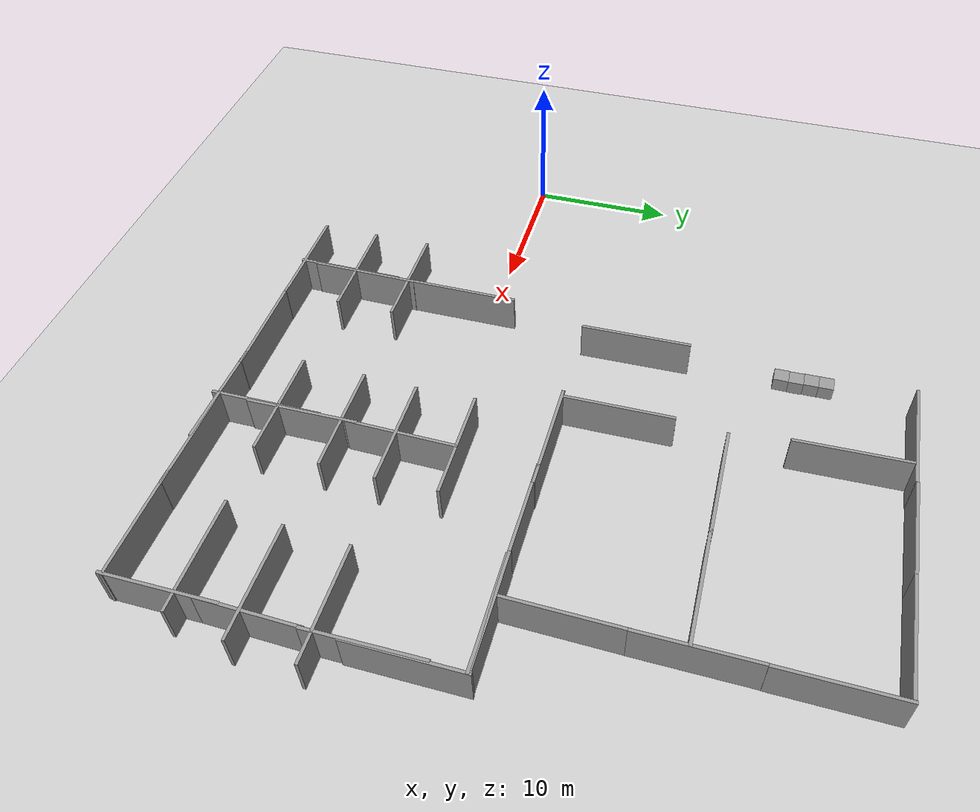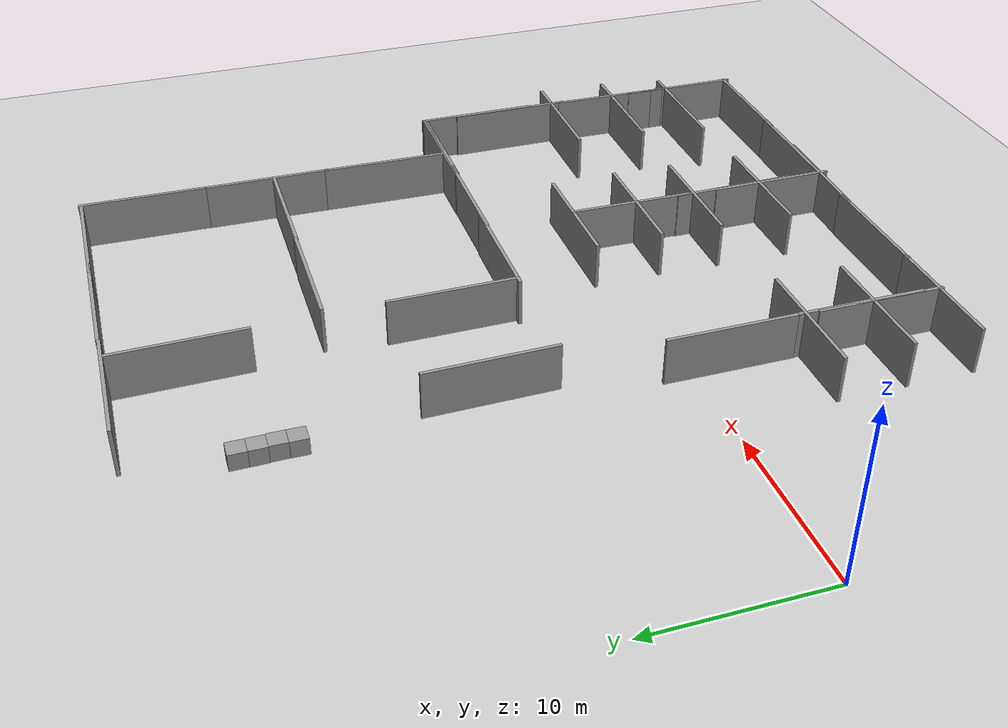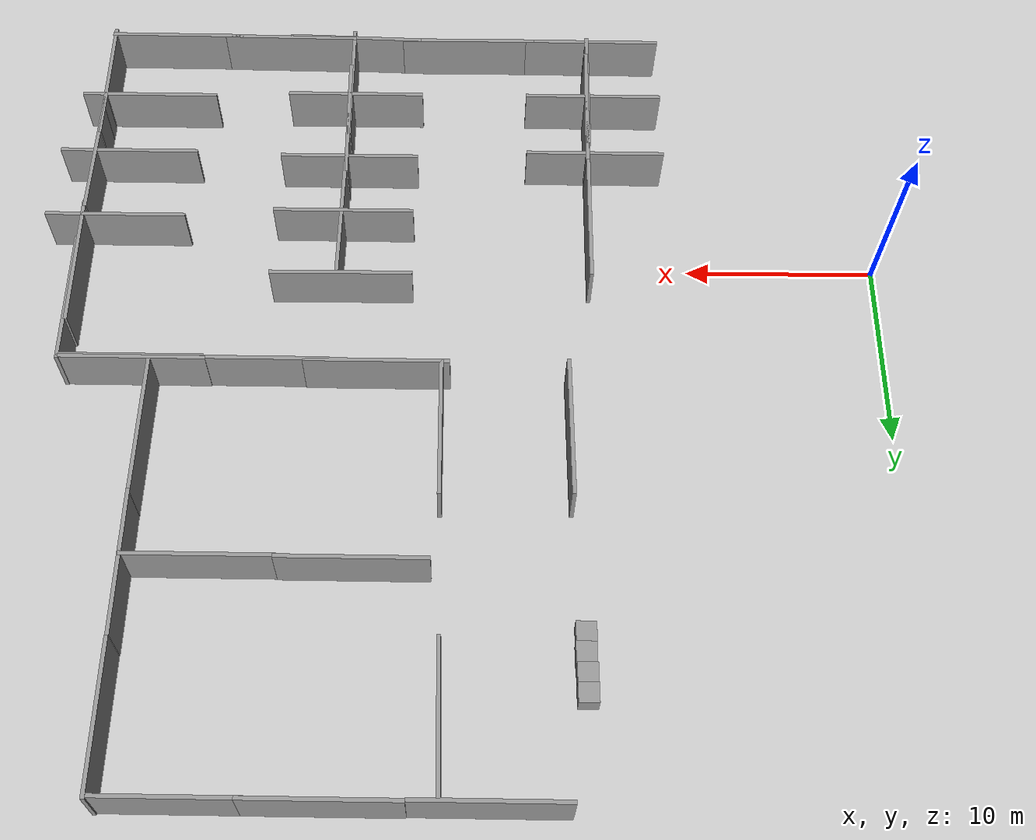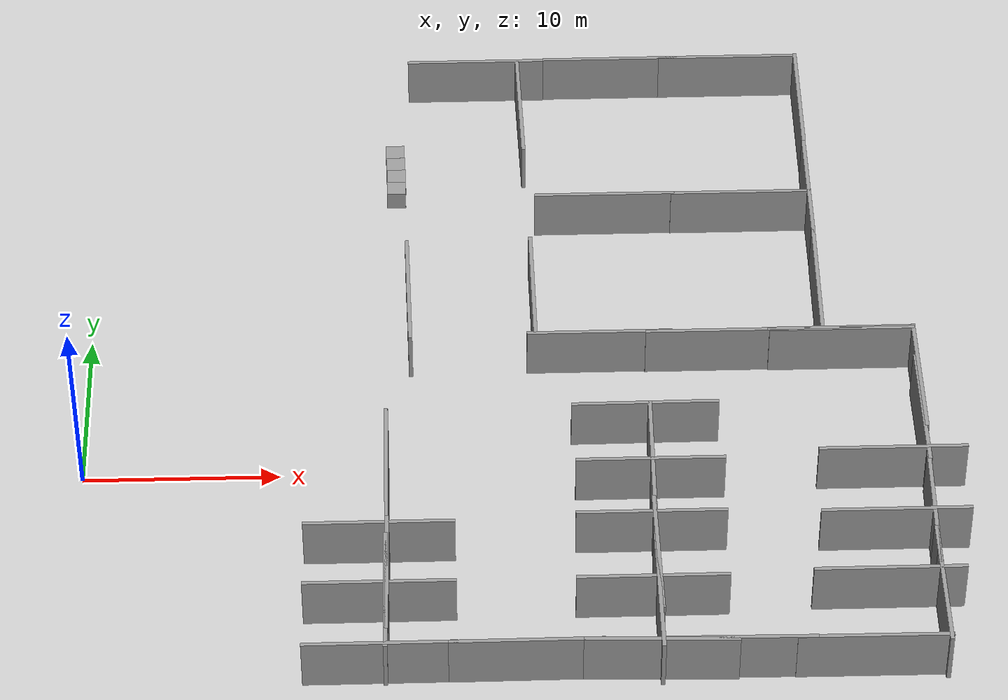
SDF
<sdf version="1.4">
 <world name="default">
  <model name="ground_plane">
   <static>1</static>
   <link name="link">
    <collision name="collision">
     <geometry><plane><normal>0 0 1</normal><size>100 100</size></plane></geometry>
     <surface><friction><ode><mu>100</mu><mu2>50</mu2></ode></friction></surface>
    </collision>
    <visual name="visual">
     <cast_shadows>0</cast_shadows>
     <geometry><plane><normal>0 0 1</normal><size>100 100</size></plane></geometry>
     <material>
      <script><uri>file://media/materials/scripts/gazebo.material</uri><name>Gazebo/Grey</name></script>
     </material>
    </visual>
    <velocity_decay><linear>0</linear><angular>0</angular></velocity_decay>
   </link>
  </model>
  <model name="grey_wall_17">
   <static>1</static>
   <link name="link">
    <pose>0 0 1.4 0 -0 0</pose>
    <collision name="collision"><geometry><box><size>7.5 0.2 2.8</size></box></geometry></collision>
    <visual name="visual">
     <cast_shadows>0</cast_shadows>
     <geometry><box><size>7.5 0.2 2.8</size></box></geometry>
     <material>
      <script>
       <uri>model://grey_wall/materials/scripts</uri>
       <uri>model://grey_wall/materials/textures</uri>
       <name>vrc/grey_wall</name>
      </script>
     </material>
    </visual>
    <velocity_decay><linear>0</linear><angular>0</angular></velocity_decay>
   </link>
   <pose>16.6069 10.8547 0 0 -0 1.58697</pose>
  </model>
  <model name="grey_wall_22">
   <static>1</static>
   <link name="link">
    <pose>0 0 1.4 0 -0 0</pose>
    <collision name="collision"><geometry><box><size>7.5 0.2 2.8</size></box></geometry></collision>
    <visual name="visual">
     <cast_shadows>0</cast_shadows>
     <geometry><box><size>7.5 0.2 2.8</size></box></geometry>
     <material>
      <script>
       <uri>model://grey_wall/materials/scripts</uri>
       <uri>model://grey_wall/materials/textures</uri>
       <name>vrc/grey_wall</name>
      </script>
     </material>
    </visual>
    <velocity_decay><linear>0</linear><angular>0</angular></velocity_decay>
   </link>
   <pose>15.2983 -10.4835 0 0 -0 1.56473</pose>
  </model>
  <model name="grey_wall_23">
   <static>1</static>
   <link name="link">
    <pose>0 0 1.4 0 -0 0</pose>
    <collision name="collision"><geometry><box><size>7.5 0.2 2.8</size></box></geometry></collision>
    <visual name="visual">
     <cast_shadows>0</cast_shadows>
     <geometry><box><size>7.5 0.2 2.8</size></box></geometry>
     <material>
      <script>
       <uri>model://grey_wall/materials/scripts</uri>
       <uri>model://grey_wall/materials/textures</uri>
       <name>vrc/grey_wall</name>
      </script>
     </material>
    </visual>
    <velocity_decay><linear>0</linear><angular>0</angular></velocity_decay>
   </link>
   <pose>28.5277 2.01083 0 0 -0 0.006082</pose>
  </model>
  <model name="grey_wall_24">
   <static>1</static>
   <link name="link">
    <pose>0 0 1.4 0 -0 0</pose>
    <collision name="collision"><geometry><box><size>7.5 0.2 2.8</size></box></geometry></collision>
    <visual name="visual">
     <cast_shadows>0</cast_shadows>
     <geometry><box><size>7.5 0.2 2.8</size></box></geometry>
     <material>
      <script>
       <uri>model://grey_wall/materials/scripts</uri>
       <uri>model://grey_wall/materials/textures</uri>
       <name>vrc/grey_wall</name>
      </script>
     </material>
    </visual>
    <velocity_decay><linear>0</linear><angular>0</angular></velocity_decay>
   </link>
   <pose>15.3834 -1.8248 0 0 -0 1.57032</pose>
  </model>
  <model name="grey_wall_25">
   <static>1</static>
   <link name="link">
    <pose>0 0 1.4 0 -0 0</pose>
    <collision name="collision"><geometry><box><size>7.5 0.2 2.8</size></box></geometry></collision>
    <visual name="visual">
     <cast_shadows>0</cast_shadows>
     <geometry><box><size>7.5 0.2 2.8</size></box></geometry>
     <material>
      <script>
       <uri>model://grey_wall/materials/scripts</uri>
       <uri>model://grey_wall/materials/textures</uri>
       <name>vrc/grey_wall</name>
      </script>
     </material>
    </visual>
    <velocity_decay><linear>0</linear><angular>0</angular></velocity_decay>
   </link>
   <pose>15.3725 -9.31245 0 0 -0 1.56183</pose>
  </model>
  <model name="grey_wall_26">
   <static>1</static>
   <link name="link">
    <pose>0 0 1.4 0 -0 0</pose>
    <collision name="collision"><geometry><box><size>7.5 0.2 2.8</size></box></geometry></collision>
    <visual name="visual">
     <cast_shadows>0</cast_shadows>
     <geometry><box><size>7.5 0.2 2.8</size></box></geometry>
     <material>
      <script>
       <uri>model://grey_wall/materials/scripts</uri>
       <uri>model://grey_wall/materials/textures</uri>
       <name>vrc/grey_wall</name>
      </script>
     </material>
    </visual>
    <velocity_decay><linear>0</linear><angular>0</angular></velocity_decay>
   </link>
   <pose>28.5623 -10.8382 0 0 -0 1.57239</pose>
  </model>
  <model name="grey_wall_28">
   <static>1</static>
   <link name="link">
    <pose>0 0 1.4 0 -0 0</pose>
    <collision name="collision"><geometry><box><size>7.5 0.2 2.8</size></box></geometry></collision>
    <visual name="visual">
     <cast_shadows>0</cast_shadows>
     <geometry><box><size>7.5 0.2 2.8</size></box></geometry>
     <material>
      <script>
       <uri>model://grey_wall/materials/scripts</uri>
       <uri>model://grey_wall/materials/textures</uri>
       <name>vrc/grey_wall</name>
      </script>
     </material>
    </visual>
    <velocity_decay><linear>0</linear><angular>0</angular></velocity_decay>
   </link>
   <pose>15 -6 0 0 -0 0</pose>
  </model>
  <model name="grey_wall_29">
   <static>1</static>
   <link name="link">
    <pose>0 0 1.4 0 -0 0</pose>
    <collision name="collision"><geometry><box><size>7.5 0.2 2.8</size></box></geometry></collision>
    <visual name="visual">
     <cast_shadows>0</cast_shadows>
     <geometry><box><size>7.5 0.2 2.8</size></box></geometry>
     <material>
      <script>
       <uri>model://grey_wall/materials/scripts</uri>
       <uri>model://grey_wall/materials/textures</uri>
       <name>vrc/grey_wall</name>
      </script>
     </material>
    </visual>
    <velocity_decay><linear>0</linear><angular>0</angular></velocity_decay>
   </link>
   <pose>15 -10 0 0 -0 0</pose>
  </model>
  <model name="grey_wall_34">
   <static>1</static>
   <link name="link">
    <pose>0 0 1.4 0 -0 0</pose>
    <collision name="collision"><geometry><box><size>7.5 0.2 2.8</size></box></geometry></collision>
    <visual name="visual">
     <cast_shadows>0</cast_shadows>
     <geometry><box><size>7.5 0.2 2.8</size></box></geometry>
     <material>
      <script>
       <uri>model://grey_wall/materials/scripts</uri>
       <uri>model://grey_wall/materials/textures</uri>
       <name>vrc/grey_wall</name>
      </script>
     </material>
    </visual>
    <velocity_decay><linear>0</linear><angular>0</angular></velocity_decay>
   </link>
   <pose>15 -14 0 0 -0 0</pose>
  </model>
  <model name="grey_wall_35">
   <static>1</static>
   <link name="link">
    <pose>0 0 1.4 0 -0 0</pose>
    <collision name="collision"><geometry><box><size>7.5 0.2 2.8</size></box></geometry></collision>
    <visual name="visual">
     <cast_shadows>0</cast_shadows>
     <geometry><box><size>7.5 0.2 2.8</size></box></geometry>
     <material>
      <script>
       <uri>model://grey_wall/materials/scripts</uri>
       <uri>model://grey_wall/materials/textures</uri>
       <name>vrc/grey_wall</name>
      </script>
     </material>
    </visual>
    <velocity_decay><linear>0</linear><angular>0</angular></velocity_decay>
   </link>
   <pose>26.442 7.30167 0 0 -0 0</pose>
  </model>
  <model name="grey_wall_37">
   <static>1</static>
   <link name="link">
    <pose>0 0 1.4 0 -0 0</pose>
    <collision name="collision"><geometry><box><size>7.5 0.2 2.8</size></box></geometry></collision>
    <visual name="visual">
     <cast_shadows>0</cast_shadows>
     <geometry><box><size>7.5 0.2 2.8</size></box></geometry>
     <material>
      <script>
       <uri>model://grey_wall/materials/scripts</uri>
       <uri>model://grey_wall/materials/textures</uri>
       <name>vrc/grey_wall</name>
      </script>
     </material>
    </visual>
    <velocity_decay><linear>0</linear><angular>0</angular></velocity_decay>
   </link>
   <pose>32.2273 -14.1046 0 0 0 -0.011813</pose>
  </model>
  <model name="grey_wall_38">
   <static>1</static>
   <link name="link">
    <pose>0 0 1.4 0 -0 0</pose>
    <collision name="collision"><geometry><box><size>7.5 0.2 2.8</size></box></geometry></collision>
    <visual name="visual">
     <cast_shadows>0</cast_shadows>
     <geometry><box><size>7.5 0.2 2.8</size></box></geometry>
     <material>
      <script>
       <uri>model://grey_wall/materials/scripts</uri>
       <uri>model://grey_wall/materials/textures</uri>
       <name>vrc/grey_wall</name>
      </script>
     </material>
    </visual>
    <velocity_decay><linear>0</linear><angular>0</angular></velocity_decay>
   </link>
   <pose>32.5681 7.25099 0 0 -0 0</pose>
  </model>
  <model name="grey_wall_39">
   <static>1</static>
   <link name="link">
    <pose>0 0 1.4 0 -0 0</pose>
    <collision name="collision"><geometry><box><size>7.5 0.2 2.8</size></box></geometry></collision>
    <visual name="visual">
     <cast_shadows>0</cast_shadows>
     <geometry><box><size>7.5 0.2 2.8</size></box></geometry>
     <material>
      <script>
       <uri>model://grey_wall/materials/scripts</uri>
       <uri>model://grey_wall/materials/textures</uri>
       <name>vrc/grey_wall</name>
      </script>
     </material>
    </visual>
    <velocity_decay><linear>0</linear><angular>0</angular></velocity_decay>
   </link>
   <pose>28.5921 -1.97337 0 0 -0 0</pose>
  </model>
  <model name="grey_wall_40">
   <static>1</static>
   <link name="link">
    <pose>0 0 1.4 0 -0 0</pose>
    <collision name="collision"><geometry><box><size>7.5 0.2 2.8</size></box></geometry></collision>
    <visual name="visual">
     <cast_shadows>0</cast_shadows>
     <geometry><box><size>7.5 0.2 2.8</size></box></geometry>
     <material>
      <script>
       <uri>model://grey_wall/materials/scripts</uri>
       <uri>model://grey_wall/materials/textures</uri>
       <name>vrc/grey_wall</name>
      </script>
     </material>
    </visual>
    <velocity_decay><linear>0</linear><angular>0</angular></velocity_decay>
   </link>
   <pose>28.6271 -8.34501 0 0 -0 1.58026</pose>
  </model>
  <model name="grey_wall_41">
   <static>1</static>
   <link name="link">
    <pose>0 0 1.4 0 -0 0</pose>
    <collision name="collision"><geometry><box><size>7.5 0.2 2.8</size></box></geometry></collision>
    <visual name="visual">
     <cast_shadows>0</cast_shadows>
     <geometry><box><size>7.5 0.2 2.8</size></box></geometry>
     <material>
      <script>
       <uri>model://grey_wall/materials/scripts</uri>
       <uri>model://grey_wall/materials/textures</uri>
       <name>vrc/grey_wall</name>
      </script>
     </material>
    </visual>
    <velocity_decay><linear>0</linear><angular>0</angular></velocity_decay>
   </link>
   <pose>28.6946 -1.65305 0 0 -0 1.55442</pose>
  </model>
  <model name="grey_wall_42">
   <static>1</static>
   <link name="link">
    <pose>0 0 1.4 0 -0 0</pose>
    <collision name="collision"><geometry><box><size>7.5 0.2 2.8</size></box></geometry></collision>
    <visual name="visual">
     <cast_shadows>0</cast_shadows>
     <geometry><box><size>7.5 0.2 2.8</size></box></geometry>
     <material>
      <script>
       <uri>model://grey_wall/materials/scripts</uri>
       <uri>model://grey_wall/materials/textures</uri>
       <name>vrc/grey_wall</name>
      </script>
     </material>
    </visual>
    <velocity_decay><linear>0</linear><angular>0</angular></velocity_decay>
   </link>
   <pose>42.537 1.36044 0 0 -0 1.57033</pose>
  </model>
  <model name="grey_wall_43">
   <static>1</static>
   <link name="link">
    <pose>0 0 1.4 0 -0 0</pose>
    <collision name="collision"><geometry><box><size>7.5 0.2 2.8</size></box></geometry></collision>
    <visual name="visual">
     <cast_shadows>0</cast_shadows>
     <geometry><box><size>7.5 0.2 2.8</size></box></geometry>
     <material>
      <script>
       <uri>model://grey_wall/materials/scripts</uri>
       <uri>model://grey_wall/materials/textures</uri>
       <name>vrc/grey_wall</name>
      </script>
     </material>
    </visual>
    <velocity_decay><linear>0</linear><angular>0</angular></velocity_decay>
   </link>
   <pose>38.9668 7.18558 0 0 -0 0</pose>
  </model>
  <model name="grey_wall_44">
   <static>1</static>
   <link name="link">
    <pose>0 0 1.4 0 -0 0</pose>
    <collision name="collision"><geometry><box><size>7.5 0.2 2.8</size></box></geometry></collision>
    <visual name="visual">
     <cast_shadows>0</cast_shadows>
     <geometry><box><size>7.5 0.2 2.8</size></box></geometry>
     <material>
      <script>
       <uri>model://grey_wall/materials/scripts</uri>
       <uri>model://grey_wall/materials/textures</uri>
       <name>vrc/grey_wall</name>
      </script>
     </material>
    </visual>
    <velocity_decay><linear>0</linear><angular>0</angular></velocity_decay>
   </link>
   <pose>28.4566 -5.63207 0 0 -0 0</pose>
  </model>
  <model name="grey_wall_45">
   <static>1</static>
   <link name="link">
    <pose>0 0 1.4 0 -0 0</pose>
    <collision name="collision"><geometry><box><size>7.5 0.2 2.8</size></box></geometry></collision>
    <visual name="visual">
     <cast_shadows>0</cast_shadows>
     <geometry><box><size>7.5 0.2 2.8</size></box></geometry>
     <material>
      <script>
       <uri>model://grey_wall/materials/scripts</uri>
       <uri>model://grey_wall/materials/textures</uri>
       <name>vrc/grey_wall</name>
      </script>
     </material>
    </visual>
    <velocity_decay><linear>0</linear><angular>0</angular></velocity_decay>
   </link>
   <pose>28.3028 -9.98143 0 0 -0 0</pose>
  </model>
  <model name="grey_wall_46">
   <static>1</static>
   <link name="link">
    <pose>0 0 1.4 0 -0 0</pose>
    <collision name="collision"><geometry><box><size>7.5 0.2 2.8</size></box></geometry></collision>
    <visual name="visual">
     <cast_shadows>0</cast_shadows>
     <geometry><box><size>7.5 0.2 2.8</size></box></geometry>
     <material>
      <script>
       <uri>model://grey_wall/materials/scripts</uri>
       <uri>model://grey_wall/materials/textures</uri>
       <name>vrc/grey_wall</name>
      </script>
     </material>
    </visual>
    <velocity_decay><linear>0</linear><angular>0</angular></velocity_decay>
   </link>
   <pose>28.4962 -14.1047 0 0 0 -0.028932</pose>
  </model>
  <model name="grey_wall_47">
   <static>1</static>
   <link name="link">
    <pose>0 0 1.4 0 -0 0</pose>
    <collision name="collision"><geometry><box><size>7.5 0.2 2.8</size></box></geometry></collision>
    <visual name="visual">
     <cast_shadows>0</cast_shadows>
     <geometry><box><size>7.5 0.2 2.8</size></box></geometry>
     <material>
      <script>
       <uri>model://grey_wall/materials/scripts</uri>
       <uri>model://grey_wall/materials/textures</uri>
       <name>vrc/grey_wall</name>
      </script>
     </material>
    </visual>
    <velocity_decay><linear>0</linear><angular>0</angular></velocity_decay>
   </link>
   <pose>22.0352 -14.0013 -0 0 -0 0.003672</pose>
  </model>
  <model name="grey_wall_48">
   <static>1</static>
   <link name="link">
    <pose>0 0 1.4 0 -0 0</pose>
    <collision name="collision"><geometry><box><size>7.5 0.2 2.8</size></box></geometry></collision>
    <visual name="visual">
     <cast_shadows>0</cast_shadows>
     <geometry><box><size>7.5 0.2 2.8</size></box></geometry>
     <material>
      <script>
       <uri>model://grey_wall/materials/scripts</uri>
       <uri>model://grey_wall/materials/textures</uri>
       <name>vrc/grey_wall</name>
      </script>
     </material>
    </visual>
    <velocity_decay><linear>0</linear><angular>0</angular></velocity_decay>
   </link>
   <pose>42.3231 -10.7893 0 0 0 -1.57325</pose>
  </model>
  <model name="grey_wall_49">
   <static>1</static>
   <link name="link">
    <pose>0 0 1.4 0 -0 0</pose>
    <collision name="collision"><geometry><box><size>7.5 0.2 2.8</size></box></geometry></collision>
    <visual name="visual">
     <cast_shadows>0</cast_shadows>
     <geometry><box><size>7.5 0.2 2.8</size></box></geometry>
     <material>
      <script>
       <uri>model://grey_wall/materials/scripts</uri>
       <uri>model://grey_wall/materials/textures</uri>
       <name>vrc/grey_wall</name>
      </script>
     </material>
    </visual>
    <velocity_decay><linear>0</linear><angular>0</angular></velocity_decay>
   </link>
   <pose>38.7141 -14.1785 0 0 -0 3.13757</pose>
  </model>
  <model name="grey_wall_50">
   <static>1</static>
   <link name="link">
    <pose>0 0 1.4 0 -0 0</pose>
    <collision name="collision"><geometry><box><size>7.5 0.2 2.8</size></box></geometry></collision>
    <visual name="visual">
     <cast_shadows>0</cast_shadows>
     <geometry><box><size>7.5 0.2 2.8</size></box></geometry>
     <material>
      <script>
       <uri>model://grey_wall/materials/scripts</uri>
       <uri>model://grey_wall/materials/textures</uri>
       <name>vrc/grey_wall</name>
      </script>
     </material>
    </visual>
    <velocity_decay><linear>0</linear><angular>0</angular></velocity_decay>
   </link>
   <pose>42.6389 3.67322 0 0 0 -1.57549</pose>
  </model>
  <model name="grey_wall_51">
   <static>1</static>
   <link name="link">
    <pose>0 0 1.4 0 -0 0</pose>
    <collision name="collision"><geometry><box><size>7.5 0.2 2.8</size></box></geometry></collision>
    <visual name="visual">
     <cast_shadows>0</cast_shadows>
     <geometry><box><size>7.5 0.2 2.8</size></box></geometry>
     <material>
      <script>
       <uri>model://grey_wall/materials/scripts</uri>
       <uri>model://grey_wall/materials/textures</uri>
       <name>vrc/grey_wall</name>
      </script>
     </material>
    </visual>
    <velocity_decay><linear>0</linear><angular>0</angular></velocity_decay>
   </link>
   <pose>42.4021 -5.76703 0 0 0 -1.59608</pose>
  </model>
  <model name="grey_wall_52">
   <static>1</static>
   <link name="link">
    <pose>0 0 1.4 0 -0 0</pose>
    <collision name="collision"><geometry><box><size>7.5 0.2 2.8</size></box></geometry></collision>
    <visual name="visual">
     <cast_shadows>0</cast_shadows>
     <geometry><box><size>7.5 0.2 2.8</size></box></geometry>
     <material>
      <script>
       <uri>model://grey_wall/materials/scripts</uri>
       <uri>model://grey_wall/materials/textures</uri>
       <name>vrc/grey_wall</name>
      </script>
     </material>
    </visual>
    <velocity_decay><linear>0</linear><angular>0</angular></velocity_decay>
   </link>
   <pose>38.8629 7.28008 0 0 -0 0</pose>
  </model>
  <model name="grey_wall_53">
   <static>1</static>
   <link name="link">
    <pose>0 0 1.4 0 -0 0</pose>
    <collision name="collision"><geometry><box><size>7.5 0.2 2.8</size></box></geometry></collision>
    <visual name="visual">
     <cast_shadows>0</cast_shadows>
     <geometry><box><size>7.5 0.2 2.8</size></box></geometry>
     <material>
      <script>
       <uri>model://grey_wall/materials/scripts</uri>
       <uri>model://grey_wall/materials/textures</uri>
       <name>vrc/grey_wall</name>
      </script>
     </material>
    </visual>
    <velocity_decay><linear>0</linear><angular>0</angular></velocity_decay>
   </link>
   <pose>40.7842 -1.53121 0 0 -0 0</pose>
  </model>
  <model name="grey_wall_57">
   <static>1</static>
   <link name="link">
    <pose>0 0 1.4 0 -0 0</pose>
    <collision name="collision"><geometry><box><size>7.5 0.2 2.8</size></box></geometry></collision>
    <visual name="visual">
     <cast_shadows>0</cast_shadows>
     <geometry><box><size>7.5 0.2 2.8</size></box></geometry>
     <material>
      <script>
       <uri>model://grey_wall/materials/scripts</uri>
       <uri>model://grey_wall/materials/textures</uri>
       <name>vrc/grey_wall</name>
      </script>
     </material>
    </visual>
    <velocity_decay><linear>0</linear><angular>0</angular></velocity_decay>
   </link>
   <pose>38.1551 18.415 0 0 -0 1.56162</pose>
  </model>
  <model name="grey_wall_58">
   <static>1</static>
   <link name="link">
    <pose>0 0 1.4 0 -0 0</pose>
    <collision name="collision"><geometry><box><size>7.5 0.2 2.8</size></box></geometry></collision>
    <visual name="visual">
     <cast_shadows>0</cast_shadows>
     <geometry><box><size>7.5 0.2 2.8</size></box></geometry>
     <material>
      <script>
       <uri>model://grey_wall/materials/scripts</uri>
       <uri>model://grey_wall/materials/textures</uri>
       <name>vrc/grey_wall</name>
      </script>
     </material>
    </visual>
    <velocity_decay><linear>0</linear><angular>0</angular></velocity_decay>
   </link>
   <pose>38.2602 25.8907 0 0 0 -1.5829</pose>
  </model>
  <model name="grey_wall_59">
   <static>1</static>
   <link name="link">
    <pose>0 0 1.4 0 -0 0</pose>
    <collision name="collision"><geometry><box><size>7.5 0.2 2.8</size></box></geometry></collision>
    <visual name="visual">
     <cast_shadows>0</cast_shadows>
     <geometry><box><size>7.5 0.2 2.8</size></box></geometry>
     <material>
      <script>
       <uri>model://grey_wall/materials/scripts</uri>
       <uri>model://grey_wall/materials/textures</uri>
       <name>vrc/grey_wall</name>
      </script>
     </material>
    </visual>
    <velocity_decay><linear>0</linear><angular>0</angular></velocity_decay>
   </link>
   <pose>38.0442 11.147 0 0 -0 1.55216</pose>
  </model>
  <model name="grey_wall_61">
   <static>1</static>
   <link name="link">
    <pose>0 0 1.4 0 -0 0</pose>
    <collision name="collision"><geometry><box><size>7.5 0.2 2.8</size></box></geometry></collision>
    <visual name="visual">
     <cast_shadows>0</cast_shadows>
     <geometry><box><size>7.5 0.2 2.8</size></box></geometry>
     <material>
      <script>
       <uri>model://grey_wall/materials/scripts</uri>
       <uri>model://grey_wall/materials/textures</uri>
       <name>vrc/grey_wall</name>
      </script>
     </material>
    </visual>
    <velocity_decay><linear>0</linear><angular>0</angular></velocity_decay>
   </link>
   <pose>34.4803 18.0295 0 0 -0 0</pose>
  </model>
  <model name="grey_wall_62">
   <static>1</static>
   <link name="link">
    <pose>0 0 1.4 0 -0 0</pose>
    <collision name="collision"><geometry><box><size>7.5 0.2 2.8</size></box></geometry></collision>
    <visual name="visual">
     <cast_shadows>0</cast_shadows>
     <geometry><box><size>7.5 0.2 2.8</size></box></geometry>
     <material>
      <script>
       <uri>model://grey_wall/materials/scripts</uri>
       <uri>model://grey_wall/materials/textures</uri>
       <name>vrc/grey_wall</name>
      </script>
     </material>
    </visual>
    <velocity_decay><linear>0</linear><angular>0</angular></velocity_decay>
   </link>
   <pose>27.1612 18.0643 0 0 -0 0</pose>
  </model>
  <model name="grey_wall_63">
   <static>1</static>
   <link name="link">
    <pose>0 0 1.4 0 -0 0</pose>
    <collision name="collision"><geometry><box><size>7.5 0.2 2.8</size></box></geometry></collision>
    <visual name="visual">
     <cast_shadows>0</cast_shadows>
     <geometry><box><size>7.5 0.2 2.8</size></box></geometry>
     <material>
      <script>
       <uri>model://grey_wall/materials/scripts</uri>
       <uri>model://grey_wall/materials/textures</uri>
       <name>vrc/grey_wall</name>
      </script>
     </material>
    </visual>
    <velocity_decay><linear>0</linear><angular>0</angular></velocity_decay>
   </link>
   <pose>34.4463 29.4753 0 0 -0 0</pose>
  </model>
  <model name="grey_wall_64">
   <static>1</static>
   <link name="link">
    <pose>0 0 1.4 0 -0 0</pose>
    <collision name="collision"><geometry><box><size>7.5 0.2 2.8</size></box></geometry></collision>
    <visual name="visual">
     <cast_shadows>0</cast_shadows>
     <geometry><box><size>7.5 0.2 2.8</size></box></geometry>
     <material>
      <script>
       <uri>model://grey_wall/materials/scripts</uri>
       <uri>model://grey_wall/materials/textures</uri>
       <name>vrc/grey_wall</name>
      </script>
     </material>
    </visual>
    <velocity_decay><linear>0</linear><angular>0</angular></velocity_decay>
   </link>
   <pose>28 29.4782 0 0 -0 0</pose>
  </model>
  <model name="grey_wall_65">
   <static>1</static>
   <link name="link">
    <pose>0 0 1.4 0 -0 0</pose>
    <collision name="collision"><geometry><box><size>7.5 0.2 2.8</size></box></geometry></collision>
    <visual name="visual">
     <cast_shadows>0</cast_shadows>
     <geometry><box><size>7.5 0.2 2.8</size></box></geometry>
     <material>
      <script>
       <uri>model://grey_wall/materials/scripts</uri>
       <uri>model://grey_wall/materials/textures</uri>
       <name>vrc/grey_wall</name>
      </script>
     </material>
    </visual>
    <velocity_decay><linear>0</linear><angular>0</angular></velocity_decay>
   </link>
   <pose>20.4945 29.4359 0 0 -0 0</pose>
  </model>
  <model name="grey_wall_66">
   <static>1</static>
   <link name="link">
    <pose>0 0 1.4 0 -0 0</pose>
    <collision name="collision"><geometry><box><size>7.5 0.2 2.8</size></box></geometry></collision>
    <visual name="visual">
     <cast_shadows>0</cast_shadows>
     <geometry><box><size>7.5 0.2 2.8</size></box></geometry>
     <material>
      <script>
       <uri>model://grey_wall/materials/scripts</uri>
       <uri>model://grey_wall/materials/textures</uri>
       <name>vrc/grey_wall</name>
      </script>
     </material>
    </visual>
    <velocity_decay><linear>0</linear><angular>0</angular></velocity_decay>
   </link>
   <pose>22.8707 25.6136 0 0 0 -1.55129</pose>
  </model>
  <model name="grey_wall">
   <static>1</static>
   <link name="link">
    <pose>0 0 1.4 0 -0 0</pose>
    <collision name="collision"><geometry><box><size>7.5 0.2 2.8</size></box></geometry></collision>
    <visual name="visual">
     <cast_shadows>0</cast_shadows>
     <geometry><box><size>7.5 0.2 2.8</size></box></geometry>
     <material>
      <script>
       <uri>model://grey_wall/materials/scripts</uri>
       <uri>model://grey_wall/materials/textures</uri>
       <name>vrc/grey_wall</name>
      </script>
     </material>
    </visual>
    <velocity_decay><linear>0</linear><angular>0</angular></velocity_decay>
   </link>
   <pose>40.5383 -5.82334 0 0 -0 0</pose>
  </model>
  <model name="grey_wall_0">
   <static>1</static>
   <link name="link">
    <pose>0 0 1.4 0 -0 0</pose>
    <collision name="collision"><geometry><box><size>7.5 0.2 2.8</size></box></geometry></collision>
    <visual name="visual">
     <cast_shadows>0</cast_shadows>
     <geometry><box><size>7.5 0.2 2.8</size></box></geometry>
     <material>
      <script>
       <uri>model://grey_wall/materials/scripts</uri>
       <uri>model://grey_wall/materials/textures</uri>
       <name>vrc/grey_wall</name>
      </script>
     </material>
    </visual>
    <velocity_decay><linear>0</linear><angular>0</angular></velocity_decay>
   </link>
   <pose>39.8483 -9.77384 0 0 -0 0</pose>
  </model>
  <model name="grey_wall_3">
   <static>1</static>
   <link name="link">
    <pose>0 0 1.4 0 -0 0</pose>
    <collision name="collision"><geometry><box><size>7.5 0.2 2.8</size></box></geometry></collision>
    <visual name="visual">
     <cast_shadows>0</cast_shadows>
     <geometry><box><size>7.5 0.2 2.8</size></box></geometry>
     <material>
      <script>
       <uri>model://grey_wall/materials/scripts</uri>
       <uri>model://grey_wall/materials/textures</uri>
       <name>vrc/grey_wall</name>
      </script>
     </material>
    </visual>
    <velocity_decay><linear>0</linear><angular>0</angular></velocity_decay>
   </link>
   <pose>23.1101 10.962 0 0 0 -1.56413</pose>
  </model>
  <model name="unit_box_1">
   <pose>15.9561 23.9033 0.5 0 -0 0.004325</pose>
   <link name="link">
    <inertial>
     <mass>1</mass>
     <inertia><ixx>1</ixx><ixy>0</ixy><ixz>0</ixz><iyy>1</iyy><iyz>0</iyz><izz>1</izz></inertia>
    </inertial>
    <collision name="collision"><geometry><box><size>1 1 1</size></box></geometry></collision>
    <visual name="visual">
     <geometry><box><size>1 1 1</size></box></geometry>
     <material>
      <script><uri>file://media/materials/scripts/gazebo.material</uri><name>Gazebo/Grey</name></script>
     </material>
    </visual>
    <velocity_decay><linear>0</linear><angular>0</angular></velocity_decay>
   </link>
   <static>0</static>
  </model>
  <model name="unit_box_2">
   <pose>15.9707 22.9032 0.5 0 -0 0.004357</pose>
   <link name="link">
    <inertial>
     <mass>1</mass>
     <inertia><ixx>1</ixx><ixy>0</ixy><ixz>0</ixz><iyy>1</iyy><iyz>0</iyz><izz>1</izz></inertia>
    </inertial>
    <collision name="collision"><geometry><box><size>1 1 1</size></box></geometry></collision>
    <visual name="visual">
     <geometry><box><size>1 1 1</size></box></geometry>
     <material>
      <script><uri>file://media/materials/scripts/gazebo.material</uri><name>Gazebo/Grey</name></script>
     </material>
    </visual>
    <velocity_decay><linear>0</linear><angular>0</angular></velocity_decay>
   </link>
   <static>0</static>
  </model>
  <model name="unit_box_3">
   <pose>16.0136 21.9033 0.5 0 -0 0.004331</pose>
   <link name="link">
    <inertial>
     <mass>1</mass>
     <inertia><ixx>1</ixx><ixy>0</ixy><ixz>0</ixz><iyy>1</iyy><iyz>0</iyz><izz>1</izz></inertia>
    </inertial>
    <collision name="collision"><geometry><box><size>1 1 1</size></box></geometry></collision>
    <visual name="visual">
     <geometry><box><size>1 1 1</size></box></geometry>
     <material>
      <script><uri>file://media/materials/scripts/gazebo.material</uri><name>Gazebo/Grey</name></script>
     </material>
    </visual>
    <velocity_decay><linear>0</linear><angular>0</angular></velocity_decay>
   </link>
   <static>0</static>
  </model>
  <model name="unit_box_4_0">
   <pose>15.9996 20.9032 0.5 0 -0 0.004323</pose>
   <link name="link">
    <inertial>
     <mass>1</mass>
     <inertia><ixx>1</ixx><ixy>0</ixy><ixz>0</ixz><iyy>1</iyy><iyz>0</iyz><izz>1</izz></inertia>
    </inertial>
    <collision name="collision"><geometry><box><size>1 1 1</size></box></geometry></collision>
    <visual name="visual">
     <geometry><box><size>1 1 1</size></box></geometry>
     <material>
      <script><uri>file://media/materials/scripts/gazebo.material</uri><name>Gazebo/Grey</name></script>
     </material>
    </visual>
    <velocity_decay><linear>0</linear><angular>0</angular></velocity_decay>
   </link>
   <static>0</static>
  </model>
 </world>
</sdf>
